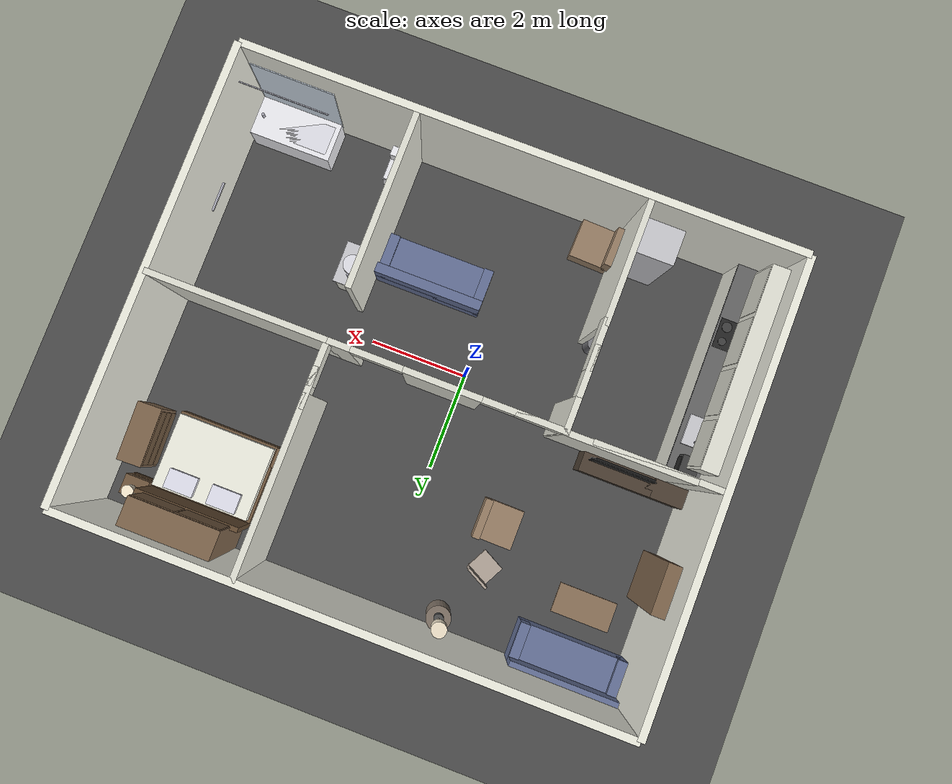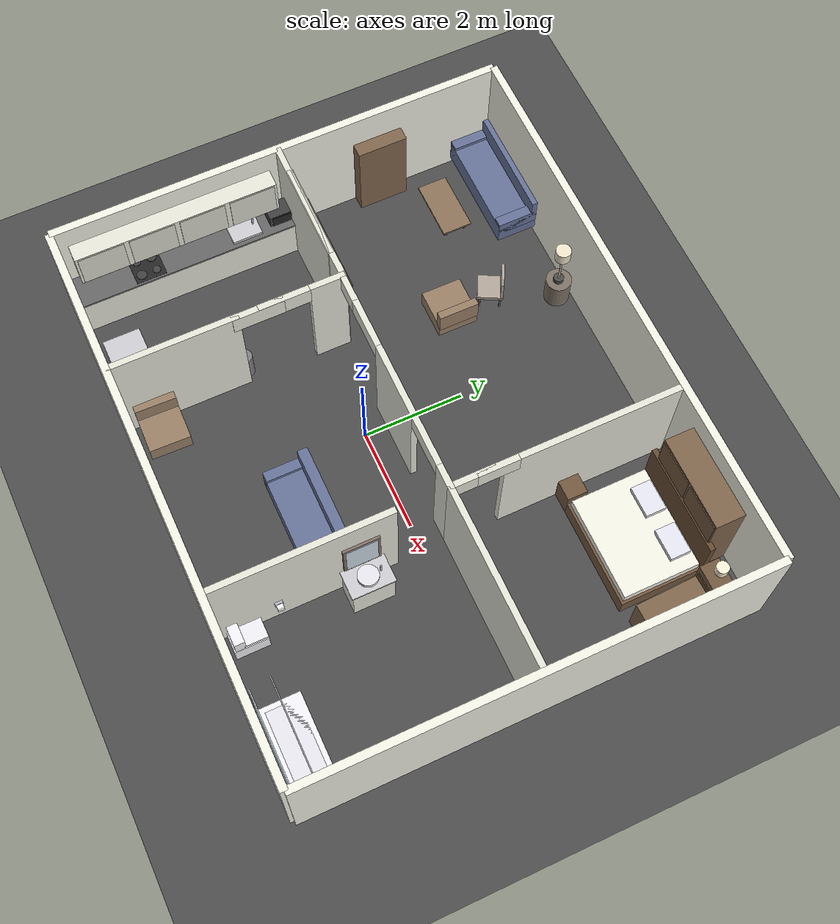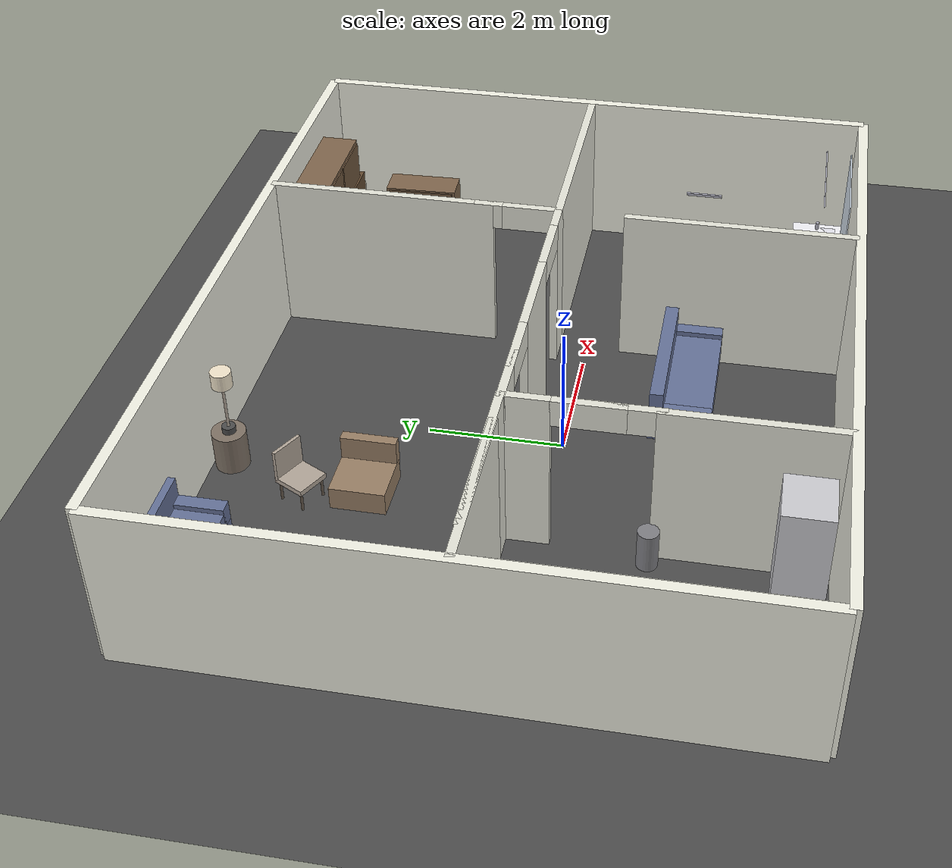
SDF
<sdf version="1.9">
 <world name="home_world">
  <physics name="1ms" type="ignored">
   <max_step_size>0.001</max_step_size>
   <real_time_factor>1</real_time_factor>
   <real_time_update_rate>1000</real_time_update_rate>
  </physics>
  <plugin name="ignition::gazebo::systems::Physics" filename="ignition-gazebo-physics-system"/>
  <plugin name="ignition::gazebo::systems::UserCommands" filename="ignition-gazebo-user-commands-system"/>
  <plugin name="ignition::gazebo::systems::SceneBroadcaster" filename="ignition-gazebo-scene-broadcaster-system"/>
  <plugin name="ignition::gazebo::systems::Contact" filename="ignition-gazebo-contact-system"/>
  <plugin name="ignition::gazebo::systems::Sensors" filename="ignition-gazebo-sensors-system">
   <render_engine>ogre2</render_engine>
  </plugin>
  <gravity>0 0 -9.8</gravity>
  <magnetic_field>6e-06 2.3e-05 -4.2e-05</magnetic_field>
  <atmosphere type="adiabatic"/>
  <scene><ambient>0.4 0.4 0.4 1</ambient><background>0.7 0.7 0.7 1</background><shadows>true</shadows></scene>
  <model name="ground_plane">
   <static>true</static>
   <link name="link">
    <collision name="collision">
     <geometry><plane><normal>0 0 1</normal><size>100 100</size></plane></geometry>
    </collision>
    <visual name="visual">
     <geometry><plane><normal>0 0 1</normal><size>100 100</size></plane></geometry>
     <material><ambient>0.3 0.3 0.3 1</ambient><diffuse>0.3 0.3 0.3 1</diffuse></material>
    </visual>
    <inertial>
     <mass>1</mass>
     <inertia><ixx>1</ixx><ixy>0</ixy><ixz>0</ixz><iyy>1</iyy><iyz>0</iyz><izz>1</izz></inertia>
    </inertial>
   </link>
  </model>
  <model name="wall_north">
   <static>true</static>
   <pose>0.5 5 1.25 0 -0 0</pose>
   <link name="link">
    <collision name="collision"><geometry><box><size>11 0.15 2.5</size></box></geometry></collision>
    <visual name="visual">
     <geometry><box><size>11 0.15 2.5</size></box></geometry>
     <material><ambient>0.9 0.9 0.85 1</ambient><diffuse>0.95 0.95 0.9 1</diffuse></material>
    </visual>
    <inertial>
     <mass>1</mass>
     <inertia><ixx>1</ixx><ixy>0</ixy><ixz>0</ixz><iyy>1</iyy><iyz>0</iyz><izz>1</izz></inertia>
    </inertial>
   </link>
  </model>
  <model name="wall_south">
   <static>true</static>
   <pose>0.5 -4 1.25 0 -0 0</pose>
   <link name="link">
    <collision name="collision"><geometry><box><size>11 0.15 2.5</size></box></geometry></collision>
    <visual name="visual">
     <geometry><box><size>11 0.15 2.5</size></box></geometry>
     <material><ambient>0.9 0.9 0.85 1</ambient><diffuse>0.95 0.95 0.9 1</diffuse></material>
    </visual>
    <inertial>
     <mass>1</mass>
     <inertia><ixx>1</ixx><ixy>0</ixy><ixz>0</ixz><iyy>1</iyy><iyz>0</iyz><izz>1</izz></inertia>
    </inertial>
   </link>
  </model>
  <model name="wall_west">
   <static>true</static>
   <pose>-5 0.5 1.25 0 -0 0</pose>
   <link name="link">
    <collision name="collision"><geometry><box><size>0.15 9 2.5</size></box></geometry></collision>
    <visual name="visual">
     <geometry><box><size>0.15 9 2.5</size></box></geometry>
     <material><ambient>0.9 0.9 0.85 1</ambient><diffuse>0.95 0.95 0.9 1</diffuse></material>
    </visual>
    <inertial>
     <mass>1</mass>
     <inertia><ixx>1</ixx><ixy>0</ixy><ixz>0</ixz><iyy>1</iyy><iyz>0</iyz><izz>1</izz></inertia>
    </inertial>
   </link>
  </model>
  <model name="wall_east">
   <static>true</static>
   <pose>6 0.5 1.25 0 -0 0</pose>
   <link name="link">
    <collision name="collision"><geometry><box><size>0.15 9 2.5</size></box></geometry></collision>
    <visual name="visual">
     <geometry><box><size>0.15 9 2.5</size></box></geometry>
     <material><ambient>0.9 0.9 0.85 1</ambient><diffuse>0.95 0.95 0.9 1</diffuse></material>
    </visual>
    <inertial>
     <mass>1</mass>
     <inertia><ixx>1</ixx><ixy>0</ixy><ixz>0</ixz><iyy>1</iyy><iyz>0</iyz><izz>1</izz></inertia>
    </inertial>
   </link>
  </model>
  <model name="wall_livingroom_south_west">
   <static>true</static>
   <pose>-3.75 0.5 1.25 0 -0 0</pose>
   <link name="link">
    <collision name="collision"><geometry><box><size>2.5 0.12 2.5</size></box></geometry></collision>
    <visual name="visual">
     <geometry><box><size>2.5 0.12 2.5</size></box></geometry>
     <material><ambient>0.85 0.85 0.8 1</ambient><diffuse>0.9 0.9 0.85 1</diffuse></material>
    </visual>
    <inertial>
     <mass>1</mass>
     <inertia><ixx>1</ixx><ixy>0</ixy><ixz>0</ixz><iyy>1</iyy><iyz>0</iyz><izz>1</izz></inertia>
    </inertial>
   </link>
  </model>
  <model name="wall_livingroom_door_header">
   <static>true</static>
   <pose>-0.929556 0.5 2.3 0 -0 0</pose>
   <link name="link">
    <collision name="collision"><geometry><box><size>1 0.12 0.4</size></box></geometry></collision>
    <visual name="visual">
     <geometry><box><size>1 0.12 0.4</size></box></geometry>
     <material><ambient>0.85 0.85 0.8 1</ambient><diffuse>0.9 0.9 0.85 1</diffuse></material>
    </visual>
    <inertial>
     <mass>1</mass>
     <inertia><ixx>1</ixx><ixy>0</ixy><ixz>0</ixz><iyy>1</iyy><iyz>0</iyz><izz>1</izz></inertia>
    </inertial>
   </link>
  </model>
  <model name="wall_center_between_doors">
   <static>true</static>
   <pose>0.318901 0.5 1.25 0 -0 0</pose>
   <link name="link">
    <collision name="collision"><geometry><box><size>1.5 0.12 2.5</size></box></geometry></collision>
    <visual name="visual">
     <geometry><box><size>1.5 0.12 2.5</size></box></geometry>
     <material><ambient>0.85 0.85 0.8 1</ambient><diffuse>0.9 0.9 0.85 1</diffuse></material>
    </visual>
    <inertial>
     <mass>1</mass>
     <inertia><ixx>1</ixx><ixy>0</ixy><ixz>0</ixz><iyy>1</iyy><iyz>0</iyz><izz>1</izz></inertia>
    </inertial>
   </link>
  </model>
  <model name="wall_bedroom_door_header">
   <static>true</static>
   <pose>1.56303 0.5 2.3 0 -0 0</pose>
   <link name="link">
    <collision name="collision"><geometry><box><size>1 0.12 0.4</size></box></geometry></collision>
    <visual name="visual">
     <geometry><box><size>1 0.12 0.4</size></box></geometry>
     <material><ambient>0.85 0.85 0.8 1</ambient><diffuse>0.9 0.9 0.85 1</diffuse></material>
    </visual>
    <inertial>
     <mass>1</mass>
     <inertia><ixx>1</ixx><ixy>0</ixy><ixz>0</ixz><iyy>1</iyy><iyz>0</iyz><izz>1</izz></inertia>
    </inertial>
   </link>
  </model>
  <model name="wall_bedroom_south">
   <static>true</static>
   <pose>2.31 0.5 1.25 0 -0 0</pose>
   <link name="link">
    <collision name="collision"><geometry><box><size>0.5 0.12 2.5</size></box></geometry></collision>
    <visual name="visual">
     <geometry><box><size>0.5 0.12 2.5</size></box></geometry>
     <material><ambient>0.85 0.85 0.8 1</ambient><diffuse>0.9 0.9 0.85 1</diffuse></material>
    </visual>
    <inertial>
     <mass>1</mass>
     <inertia><ixx>1</ixx><ixy>0</ixy><ixz>0</ixz><iyy>1</iyy><iyz>0</iyz><izz>1</izz></inertia>
    </inertial>
   </link>
  </model>
  <model name="wall_bathroom_north">
   <static>true</static>
   <pose>4.25 0.5 1.25 0 -0 0</pose>
   <link name="link">
    <collision name="collision"><geometry><box><size>3.5 0.12 2.5</size></box></geometry></collision>
    <visual name="visual">
     <geometry><box><size>3.5 0.12 2.5</size></box></geometry>
     <material><ambient>0.85 0.85 0.8 1</ambient><diffuse>0.9 0.9 0.85 1</diffuse></material>
    </visual>
    <inertial>
     <mass>1</mass>
     <inertia><ixx>1</ixx><ixy>0</ixy><ixz>0</ixz><iyy>1</iyy><iyz>0</iyz><izz>1</izz></inertia>
    </inertial>
   </link>
  </model>
  <model name="wall_living_kitchen_upper">
   <static>true</static>
   <pose>-2 0.205752 1.25 0 -0 0</pose>
   <link name="link">
    <collision name="collision"><geometry><box><size>0.12 0.7 2.5</size></box></geometry></collision>
    <visual name="visual">
     <geometry><box><size>0.12 0.7 2.5</size></box></geometry>
     <material><ambient>0.85 0.85 0.8 1</ambient><diffuse>0.9 0.9 0.85 1</diffuse></material>
    </visual>
    <inertial>
     <mass>1</mass>
     <inertia><ixx>1</ixx><ixy>0</ixy><ixz>0</ixz><iyy>1</iyy><iyz>0</iyz><izz>1</izz></inertia>
    </inertial>
   </link>
  </model>
  <model name="wall_kitchen_door_header">
   <static>true</static>
   <pose>-2 -0.634617 2.3 0 -0 0</pose>
   <link name="link">
    <collision name="collision"><geometry><box><size>0.12 1 0.4</size></box></geometry></collision>
    <visual name="visual">
     <geometry><box><size>0.12 1 0.4</size></box></geometry>
     <material><ambient>0.85 0.85 0.8 1</ambient><diffuse>0.9 0.9 0.85 1</diffuse></material>
    </visual>
    <inertial>
     <mass>1</mass>
     <inertia><ixx>1</ixx><ixy>0</ixy><ixz>0</ixz><iyy>1</iyy><iyz>0</iyz><izz>1</izz></inertia>
    </inertial>
   </link>
  </model>
  <model name="wall_living_kitchen_lower">
   <static>true</static>
   <pose>-2 -2.75 1.25 0 -0 0</pose>
   <link name="link">
    <collision name="collision"><geometry><box><size>0.12 2.5 2.5</size></box></geometry></collision>
    <visual name="visual">
     <geometry><box><size>0.12 2.5 2.5</size></box></geometry>
     <material><ambient>0.85 0.85 0.8 1</ambient><diffuse>0.9 0.9 0.85 1</diffuse></material>
    </visual>
    <inertial>
     <mass>1</mass>
     <inertia><ixx>1</ixx><ixy>0</ixy><ixz>0</ixz><iyy>1</iyy><iyz>0</iyz><izz>1</izz></inertia>
    </inertial>
   </link>
  </model>
  <model name="wall_bedroom_bathroom_upper">
   <static>true</static>
   <pose>2.5 3.25 1.25 0 -0 0</pose>
   <link name="link">
    <collision name="collision"><geometry><box><size>0.12 3.5 2.5</size></box></geometry></collision>
    <visual name="visual">
     <geometry><box><size>0.12 3.5 2.5</size></box></geometry>
     <material><ambient>0.85 0.85 0.8 1</ambient><diffuse>0.9 0.9 0.85 1</diffuse></material>
    </visual>
    <inertial>
     <mass>1</mass>
     <inertia><ixx>1</ixx><ixy>0</ixy><ixz>0</ixz><iyy>1</iyy><iyz>0</iyz><izz>1</izz></inertia>
    </inertial>
   </link>
  </model>
  <model name="wall_bathroom_door_header">
   <static>true</static>
   <pose>2.5 0.959848 2.3 0 -0 0</pose>
   <link name="link">
    <collision name="collision"><geometry><box><size>0.12 0.8 0.4</size></box></geometry></collision>
    <visual name="visual">
     <geometry><box><size>0.12 0.8 0.4</size></box></geometry>
     <material><ambient>0.85 0.85 0.8 1</ambient><diffuse>0.9 0.9 0.85 1</diffuse></material>
    </visual>
    <inertial>
     <mass>1</mass>
     <inertia><ixx>1</ixx><ixy>0</ixy><ixz>0</ixz><iyy>1</iyy><iyz>0</iyz><izz>1</izz></inertia>
    </inertial>
   </link>
  </model>
  <model name="wall_bedroom_bathroom_lower">
   <static>true</static>
   <pose>2.5 -2.25 1.25 0 -0 0</pose>
   <link name="link">
    <collision name="collision"><geometry><box><size>0.12 3.5 2.5</size></box></geometry></collision>
    <visual name="visual">
     <geometry><box><size>0.12 3.5 2.5</size></box></geometry>
     <material><ambient>0.85 0.85 0.8 1</ambient><diffuse>0.9 0.9 0.85 1</diffuse></material>
    </visual>
    <inertial>
     <mass>1</mass>
     <inertia><ixx>1</ixx><ixy>0</ixy><ixz>0</ixz><iyy>1</iyy><iyz>0</iyz><izz>1</izz></inertia>
    </inertial>
   </link>
  </model>
  <model name="sofa">
   <static>true</static>
   <pose>-3.8127 4.56578 0.4 0 -0 0</pose>
   <link name="link">
    <collision name="seat_col"><geometry><box><size>2.2 0.9 0.45</size></box></geometry></collision>
    <visual name="seat_vis">
     <geometry><box><size>2.2 0.9 0.45</size></box></geometry>
     <material><ambient>0.3 0.35 0.5 1</ambient><diffuse>0.4 0.45 0.6 1</diffuse></material>
    </visual>
    <collision name="back_col">
     <pose>0 0.35 0.35 0 0 0</pose>
     <geometry><box><size>2.2 0.2 0.5</size></box></geometry>
    </collision>
    <visual name="back_vis">
     <pose>0 0.35 0.35 0 0 0</pose>
     <geometry><box><size>2.2 0.2 0.5</size></box></geometry>
     <material><ambient>0.3 0.35 0.5 1</ambient><diffuse>0.4 0.45 0.6 1</diffuse></material>
    </visual>
    <visual name="arm_left">
     <pose>-1.0 0 0.15 0 0 0</pose>
     <geometry><box><size>0.2 0.9 0.3</size></box></geometry>
     <material><ambient>0.3 0.35 0.5 1</ambient><diffuse>0.4 0.45 0.6 1</diffuse></material>
    </visual>
    <visual name="arm_right">
     <pose>1.0 0 0.15 0 0 0</pose>
     <geometry><box><size>0.2 0.9 0.3</size></box></geometry>
     <material><ambient>0.3 0.35 0.5 1</ambient><diffuse>0.4 0.45 0.6 1</diffuse></material>
    </visual>
    <inertial>
     <mass>1</mass>
     <inertia><ixx>1</ixx><ixy>0</ixy><ixz>0</ixz><iyy>1</iyy><iyz>0</iyz><izz>1</izz></inertia>
    </inertial>
   </link>
  </model>
  <model name="coffee_table">
   <static>true</static>
   <pose>-3.86253 3.48221 0.22 0 -0 0</pose>
   <link name="link">
    <collision name="top_col"><geometry><box><size>1.2 0.6 0.04</size></box></geometry></collision>
    <visual name="top_vis">
     <geometry><box><size>1.2 0.6 0.04</size></box></geometry>
     <material><ambient>0.45 0.35 0.25 1</ambient><diffuse>0.55 0.45 0.35 1</diffuse></material>
    </visual>
    <visual name="leg1">
     <pose>-0.5 -0.2 -0.1 0 0 0</pose>
     <geometry>
      <cylinder><radius>0.029999999999999999</radius><length>0.20000000000000001</length></cylinder>
     </geometry>
     <material><ambient>0.3 0.25 0.2 1</ambient><diffuse>0.4 0.35 0.3 1</diffuse></material>
    </visual>
    <visual name="leg2">
     <pose>0.5 -0.2 -0.1 0 0 0</pose>
     <geometry>
      <cylinder><radius>0.029999999999999999</radius><length>0.20000000000000001</length></cylinder>
     </geometry>
     <material><ambient>0.3 0.25 0.2 1</ambient><diffuse>0.4 0.35 0.3 1</diffuse></material>
    </visual>
    <visual name="leg3">
     <pose>-0.5 0.2 -0.1 0 0 0</pose>
     <geometry>
      <cylinder><radius>0.029999999999999999</radius><length>0.20000000000000001</length></cylinder>
     </geometry>
     <material><ambient>0.3 0.25 0.2 1</ambient><diffuse>0.4 0.35 0.3 1</diffuse></material>
    </visual>
    <visual name="leg4">
     <pose>0.5 0.2 -0.1 0 0 0</pose>
     <geometry>
      <cylinder><radius>0.029999999999999999</radius><length>0.20000000000000001</length></cylinder>
     </geometry>
     <material><ambient>0.3 0.25 0.2 1</ambient><diffuse>0.4 0.35 0.3 1</diffuse></material>
    </visual>
    <inertial>
     <mass>1</mass>
     <inertia><ixx>1</ixx><ixy>0</ixy><ixz>0</ixz><iyy>1</iyy><iyz>0</iyz><izz>1</izz></inertia>
    </inertial>
   </link>
  </model>
  <model name="tv_stand">
   <static>true</static>
   <pose>-3.5 0.784214 0.3 0 -0 0</pose>
   <link name="link">
    <collision name="collision"><geometry><box><size>1.5 0.4 0.6</size></box></geometry></collision>
    <visual name="visual">
     <geometry><box><size>1.5 0.4 0.6</size></box></geometry>
     <material><ambient>0.2 0.15 0.1 1</ambient><diffuse>0.3 0.25 0.2 1</diffuse></material>
    </visual>
    <inertial>
     <mass>1</mass>
     <inertia><ixx>1</ixx><ixy>0</ixy><ixz>0</ixz><iyy>1</iyy><iyz>0</iyz><izz>1</izz></inertia>
    </inertial>
   </link>
  </model>
  <model name="tv">
   <static>true</static>
   <pose>-3.5 0.682625 0.85 0 -0 0</pose>
   <link name="link">
    <collision name="collision"><geometry><box><size>1.2 0.08 0.7</size></box></geometry></collision>
    <visual name="screen">
     <geometry><box><size>1.2 0.05 0.7</size></box></geometry>
     <material><ambient>0.05 0.05 0.05 1</ambient><diffuse>0.1 0.1 0.1 1</diffuse></material>
    </visual>
    <visual name="frame">
     <pose>0 0.03 0 0 0 0</pose>
     <geometry><box><size>1.25 0.02 0.75</size></box></geometry>
     <material><ambient>0.15 0.15 0.15 1</ambient><diffuse>0.2 0.2 0.2 1</diffuse></material>
    </visual>
    <inertial>
     <mass>1</mass>
     <inertia><ixx>1</ixx><ixy>0</ixy><ixz>0</ixz><iyy>1</iyy><iyz>0</iyz><izz>1</izz></inertia>
    </inertial>
   </link>
  </model>
  <model name="armchair">
   <static>true</static>
   <pose>-1.66029 2.53221 0.35 0 0 -1.57651</pose>
   <link name="link">
    <collision name="seat_col"><geometry><box><size>0.8 0.8 0.35</size></box></geometry></collision>
    <visual name="seat_vis">
     <geometry><box><size>0.8 0.8 0.35</size></box></geometry>
     <material><ambient>0.5 0.4 0.3 1</ambient><diffuse>0.6 0.5 0.4 1</diffuse></material>
    </visual>
    <visual name="back">
     <pose>0 0.35 0.3 0 0 0</pose>
     <geometry><box><size>0.8 0.15 0.45</size></box></geometry>
     <material><ambient>0.5 0.4 0.3 1</ambient><diffuse>0.6 0.5 0.4 1</diffuse></material>
    </visual>
    <inertial>
     <mass>1</mass>
     <inertia><ixx>1</ixx><ixy>0</ixy><ixz>0</ixz><iyy>1</iyy><iyz>0</iyz><izz>1</izz></inertia>
    </inertial>
   </link>
  </model>
  <model name="bookshelf">
   <static>true</static>
   <pose>-4.8 2.5 0.9 0 -0 0</pose>
   <link name="link">
    <collision name="collision"><geometry><box><size>0.3 1 1.8</size></box></geometry></collision>
    <visual name="frame">
     <geometry><box><size>0.3 1 1.8</size></box></geometry>
     <material><ambient>0.4 0.3 0.2 1</ambient><diffuse>0.5 0.4 0.3 1</diffuse></material>
    </visual>
    <visual name="shelf1">
     <pose>0 0 -0.6 0 0 0</pose>
     <geometry><box><size>0.28 0.95 0.02</size></box></geometry>
     <material><ambient>0.35 0.25 0.15 1</ambient><diffuse>0.45 0.35 0.25 1</diffuse></material>
    </visual>
    <visual name="shelf2">
     <geometry><box><size>0.28 0.95 0.02</size></box></geometry>
     <material><ambient>0.35 0.25 0.15 1</ambient><diffuse>0.45 0.35 0.25 1</diffuse></material>
    </visual>
    <visual name="shelf3">
     <pose>0 0 0.6 0 0 0</pose>
     <geometry><box><size>0.28 0.95 0.02</size></box></geometry>
     <material><ambient>0.35 0.25 0.15 1</ambient><diffuse>0.45 0.35 0.25 1</diffuse></material>
    </visual>
    <inertial>
     <mass>1</mass>
     <inertia><ixx>1</ixx><ixy>0</ixy><ixz>0</ixz><iyy>1</iyy><iyz>0</iyz><izz>1</izz></inertia>
    </inertial>
   </link>
  </model>
  <model name="side_table">
   <static>true</static>
   <pose>-1.2 4.65187 0.3 0 -0 0</pose>
   <link name="link">
    <collision name="collision">
     <geometry><cylinder><radius>0.25</radius><length>0.59999999999999998</length></cylinder></geometry>
    </collision>
    <visual name="visual">
     <geometry><cylinder><radius>0.25</radius><length>0.59999999999999998</length></cylinder></geometry>
     <material><ambient>0.4 0.35 0.3 1</ambient><diffuse>0.5 0.45 0.4 1</diffuse></material>
    </visual>
    <inertial>
     <mass>1</mass>
     <inertia><ixx>1</ixx><ixy>0</ixy><ixz>0</ixz><iyy>1</iyy><iyz>0</iyz><izz>1</izz></inertia>
    </inertial>
   </link>
  </model>
  <model name="floor_lamp">
   <static>true</static>
   <pose>-1.2 4.63964 0.6 0 -0 0</pose>
   <link name="link">
    <visual name="base">
     <pose>0 0 0.05 0 0 0</pose>
     <geometry>
      <cylinder><radius>0.10000000000000001</radius><length>0.10000000000000001</length></cylinder>
     </geometry>
     <material><ambient>0.2 0.2 0.2 1</ambient><diffuse>0.3 0.3 0.3 1</diffuse></material>
    </visual>
    <visual name="pole">
     <pose>0 0 0.5 0 0 0</pose>
     <geometry><cylinder><radius>0.02</radius><length>0.80000000000000004</length></cylinder></geometry>
     <material><ambient>0.6 0.55 0.5 1</ambient><diffuse>0.7 0.65 0.6 1</diffuse></material>
    </visual>
    <visual name="shade">
     <pose>0 0 0.95 0 0 0</pose>
     <geometry><cylinder><radius>0.14999999999999999</radius><length>0.25</length></cylinder></geometry>
     <material><ambient>0.9 0.85 0.7 1</ambient><diffuse>0.95 0.9 0.8 1</diffuse></material>
    </visual>
    <inertial>
     <mass>1</mass>
     <inertia><ixx>1</ixx><ixy>0</ixy><ixz>0</ixz><iyy>1</iyy><iyz>0</iyz><izz>1</izz></inertia>
    </inertial>
   </link>
  </model>
  <model name="bed">
   <static>true</static>
   <pose>4 3.5 0 0 -0 0</pose>
   <link name="link">
    <collision name="frame_col">
     <pose>0 0 0.2 0 0 0</pose>
     <geometry><box><size>2.1 1.6 0.4</size></box></geometry>
    </collision>
    <visual name="frame_vis">
     <pose>0 0 0.2 0 0 0</pose>
     <geometry><box><size>2.1 1.6 0.4</size></box></geometry>
     <material><ambient>0.35 0.25 0.15 1</ambient><diffuse>0.45 0.35 0.25 1</diffuse></material>
    </visual>
    <collision name="mattress_col">
     <pose>0 0 0.5 0 0 0</pose>
     <geometry><box><size>2 1.5 0.2</size></box></geometry>
    </collision>
    <visual name="mattress_vis">
     <pose>0 0 0.5 0 0 0</pose>
     <geometry><box><size>2 1.5 0.2</size></box></geometry>
     <material><ambient>0.9 0.9 0.85 1</ambient><diffuse>0.95 0.95 0.9 1</diffuse></material>
    </visual>
    <collision name="headboard_col">
     <pose>0 0.85 0.8 0 0 0</pose>
     <geometry><box><size>2.1 0.1 1</size></box></geometry>
    </collision>
    <visual name="headboard_vis">
     <pose>0 0.85 0.8 0 0 0</pose>
     <geometry><box><size>2.1 0.1 1</size></box></geometry>
     <material><ambient>0.3 0.2 0.12 1</ambient><diffuse>0.4 0.3 0.2 1</diffuse></material>
    </visual>
    <visual name="pillow1">
     <pose>-0.45 0.5 0.65 0 0 0</pose>
     <geometry><box><size>0.6 0.4 0.12</size></box></geometry>
     <material><ambient>0.85 0.85 0.9 1</ambient><diffuse>0.9 0.9 0.95 1</diffuse></material>
    </visual>
    <visual name="pillow2">
     <pose>0.45 0.5 0.65 0 0 0</pose>
     <geometry><box><size>0.6 0.4 0.12</size></box></geometry>
     <material><ambient>0.85 0.85 0.9 1</ambient><diffuse>0.9 0.9 0.95 1</diffuse></material>
    </visual>
    <inertial>
     <mass>1</mass>
     <inertia><ixx>1</ixx><ixy>0</ixy><ixz>0</ixz><iyy>1</iyy><iyz>0</iyz><izz>1</izz></inertia>
    </inertial>
   </link>
  </model>
  <model name="nightstand_1">
   <static>true</static>
   <pose>5.3 4.42414 0.3 0 -0 0</pose>
   <link name="link">
    <collision name="collision"><geometry><box><size>0.5 0.4 0.6</size></box></geometry></collision>
    <visual name="visual">
     <geometry><box><size>0.5 0.4 0.6</size></box></geometry>
     <material><ambient>0.35 0.25 0.15 1</ambient><diffuse>0.45 0.35 0.25 1</diffuse></material>
    </visual>
    <visual name="drawer">
     <pose>0 -0.21 0 0 0 0</pose>
     <geometry><box><size>0.4 0.02 0.2</size></box></geometry>
     <material><ambient>0.3 0.2 0.1 1</ambient><diffuse>0.4 0.3 0.2 1</diffuse></material>
    </visual>
    <inertial>
     <mass>1</mass>
     <inertia><ixx>1</ixx><ixy>0</ixy><ixz>0</ixz><iyy>1</iyy><iyz>0</iyz><izz>1</izz></inertia>
    </inertial>
   </link>
  </model>
  <model name="nightstand_2">
   <static>true</static>
   <pose>2.7 2.89912 0.3 0 -0 0</pose>
   <link name="link">
    <collision name="collision"><geometry><box><size>0.5 0.4 0.6</size></box></geometry></collision>
    <visual name="visual">
     <geometry><box><size>0.5 0.4 0.6</size></box></geometry>
     <material><ambient>0.35 0.25 0.15 1</ambient><diffuse>0.45 0.35 0.25 1</diffuse></material>
    </visual>
    <inertial>
     <mass>1</mass>
     <inertia><ixx>1</ixx><ixy>0</ixy><ixz>0</ixz><iyy>1</iyy><iyz>0</iyz><izz>1</izz></inertia>
    </inertial>
   </link>
  </model>
  <model name="bedside_lamp">
   <static>true</static>
   <pose>5.3 4.49184 0.6 0 -0 0</pose>
   <link name="link">
    <visual name="base">
     <pose>0 0 0.05 0 0 0</pose>
     <geometry>
      <cylinder><radius>0.080000000000000002</radius><length>0.10000000000000001</length></cylinder>
     </geometry>
     <material><ambient>0.6 0.55 0.5 1</ambient><diffuse>0.7 0.65 0.6 1</diffuse></material>
    </visual>
    <visual name="shade">
     <pose>0 0 0.2 0 0 0</pose>
     <geometry><cylinder><radius>0.12</radius><length>0.20000000000000001</length></cylinder></geometry>
     <material><ambient>0.95 0.9 0.8 1</ambient><diffuse>1 0.95 0.85 1</diffuse></material>
    </visual>
    <inertial>
     <mass>1</mass>
     <inertia><ixx>1</ixx><ixy>0</ixy><ixz>0</ixz><iyy>1</iyy><iyz>0</iyz><izz>1</izz></inertia>
    </inertial>
   </link>
  </model>
  <model name="wardrobe">
   <static>true</static>
   <pose>4 4.65 1 0 -0 0</pose>
   <link name="link">
    <collision name="collision"><geometry><box><size>1.8 0.6 2</size></box></geometry></collision>
    <visual name="visual">
     <geometry><box><size>1.8 0.6 2</size></box></geometry>
     <material><ambient>0.4 0.3 0.2 1</ambient><diffuse>0.5 0.4 0.3 1</diffuse></material>
    </visual>
    <visual name="door_left">
     <pose>-0.45 -0.31 0 0 0 0</pose>
     <geometry><box><size>0.85 0.02 1.9</size></box></geometry>
     <material><ambient>0.35 0.25 0.15 1</ambient><diffuse>0.45 0.35 0.25 1</diffuse></material>
    </visual>
    <visual name="door_right">
     <pose>0.45 -0.31 0 0 0 0</pose>
     <geometry><box><size>0.85 0.02 1.9</size></box></geometry>
     <material><ambient>0.35 0.25 0.15 1</ambient><diffuse>0.45 0.35 0.25 1</diffuse></material>
    </visual>
    <inertial>
     <mass>1</mass>
     <inertia><ixx>1</ixx><ixy>0</ixy><ixz>0</ixz><iyy>1</iyy><iyz>0</iyz><izz>1</izz></inertia>
    </inertial>
   </link>
  </model>
  <model name="dresser">
   <static>true</static>
   <pose>5.50802 3.38724 0.45 0 0 -1.54098</pose>
   <link name="link">
    <collision name="collision"><geometry><box><size>1.2 0.5 0.9</size></box></geometry></collision>
    <visual name="visual">
     <geometry><box><size>1.2 0.5 0.9</size></box></geometry>
     <material><ambient>0.4 0.3 0.2 1</ambient><diffuse>0.5 0.4 0.3 1</diffuse></material>
    </visual>
    <visual name="drawer1">
     <pose>0 -0.26 0.3 0 0 0</pose>
     <geometry><box><size>1.1 0.02 0.25</size></box></geometry>
     <material><ambient>0.35 0.25 0.15 1</ambient><diffuse>0.45 0.35 0.25 1</diffuse></material>
    </visual>
    <visual name="drawer2">
     <pose>0 -0.26 0 0 0 0</pose>
     <geometry><box><size>1.1 0.02 0.25</size></box></geometry>
     <material><ambient>0.35 0.25 0.15 1</ambient><diffuse>0.45 0.35 0.25 1</diffuse></material>
    </visual>
    <visual name="drawer3">
     <pose>0 -0.26 -0.3 0 0 0</pose>
     <geometry><box><size>1.1 0.02 0.25</size></box></geometry>
     <material><ambient>0.35 0.25 0.15 1</ambient><diffuse>0.45 0.35 0.25 1</diffuse></material>
    </visual>
    <inertial>
     <mass>1</mass>
     <inertia><ixx>1</ixx><ixy>0</ixy><ixz>0</ixz><iyy>1</iyy><iyz>0</iyz><izz>1</izz></inertia>
    </inertial>
   </link>
  </model>
  <model name="bedroom_chair">
   <static>true</static>
   <pose>-1.71989 3.44443 0.35 0 0 -0.48062</pose>
   <link name="link">
    <collision name="collision"><geometry><box><size>0.5 0.5 0.35</size></box></geometry></collision>
    <visual name="seat">
     <geometry><box><size>0.5 0.5 0.08</size></box></geometry>
     <material><ambient>0.6 0.55 0.5 1</ambient><diffuse>0.7 0.65 0.6 1</diffuse></material>
    </visual>
    <visual name="back">
     <pose>0 0.22 0.25 0 0 0</pose>
     <geometry><box><size>0.5 0.05 0.5</size></box></geometry>
     <material><ambient>0.6 0.55 0.5 1</ambient><diffuse>0.7 0.65 0.6 1</diffuse></material>
    </visual>
    <visual name="leg1">
     <pose>-0.2 -0.2 -0.175 0 0 0</pose>
     <geometry><cylinder><radius>0.02</radius><length>0.34999999999999998</length></cylinder></geometry>
     <material><ambient>0.3 0.25 0.2 1</ambient><diffuse>0.4 0.35 0.3 1</diffuse></material>
    </visual>
    <visual name="leg2">
     <pose>0.2 -0.2 -0.175 0 0 0</pose>
     <geometry><cylinder><radius>0.02</radius><length>0.34999999999999998</length></cylinder></geometry>
     <material><ambient>0.3 0.25 0.2 1</ambient><diffuse>0.4 0.35 0.3 1</diffuse></material>
    </visual>
    <visual name="leg3">
     <pose>-0.2 0.2 -0.175 0 0 0</pose>
     <geometry><cylinder><radius>0.02</radius><length>0.34999999999999998</length></cylinder></geometry>
     <material><ambient>0.3 0.25 0.2 1</ambient><diffuse>0.4 0.35 0.3 1</diffuse></material>
    </visual>
    <visual name="leg4">
     <pose>0.2 0.2 -0.175 0 0 0</pose>
     <geometry><cylinder><radius>0.02</radius><length>0.34999999999999998</length></cylinder></geometry>
     <material><ambient>0.3 0.25 0.2 1</ambient><diffuse>0.4 0.35 0.3 1</diffuse></material>
    </visual>
    <inertial>
     <mass>1</mass>
     <inertia><ixx>1</ixx><ixy>0</ixy><ixz>0</ixz><iyy>1</iyy><iyz>0</iyz><izz>1</izz></inertia>
    </inertial>
   </link>
  </model>
  <model name="kitchen_counter_west">
   <static>true</static>
   <pose>-4.6 -1.75 0.45 0 -0 0</pose>
   <link name="link">
    <collision name="collision"><geometry><box><size>0.65 4.5 0.9</size></box></geometry></collision>
    <visual name="cabinet">
     <geometry><box><size>0.65 4.5 0.9</size></box></geometry>
     <material><ambient>0.85 0.85 0.8 1</ambient><diffuse>0.9 0.9 0.85 1</diffuse></material>
    </visual>
    <visual name="countertop">
     <pose>0 0 0.47 0 0 0</pose>
     <geometry><box><size>0.68 4.55 0.04</size></box></geometry>
     <material><ambient>0.3 0.3 0.3 1</ambient><diffuse>0.4 0.4 0.4 1</diffuse></material>
    </visual>
    <inertial>
     <mass>1</mass>
     <inertia><ixx>1</ixx><ixy>0</ixy><ixz>0</ixz><iyy>1</iyy><iyz>0</iyz><izz>1</izz></inertia>
    </inertial>
   </link>
  </model>
  <model name="stove">
   <static>true</static>
   <pose>-4.6 -2.5 0.92 0 -0 0</pose>
   <link name="link">
    <collision name="collision"><geometry><box><size>0.6 0.6 0.05</size></box></geometry></collision>
    <visual name="surface">
     <geometry><box><size>0.6 0.6 0.05</size></box></geometry>
     <material><ambient>0.1 0.1 0.1 1</ambient><diffuse>0.15 0.15 0.15 1</diffuse></material>
    </visual>
    <visual name="burner1">
     <pose>-0.15 0.15 0.03 0 0 0</pose>
     <geometry><cylinder><radius>0.10000000000000001</radius><length>0.02</length></cylinder></geometry>
     <material><ambient>0.2 0.2 0.2 1</ambient><diffuse>0.25 0.25 0.25 1</diffuse></material>
    </visual>
    <visual name="burner2">
     <pose>0.15 0.15 0.03 0 0 0</pose>
     <geometry><cylinder><radius>0.080000000000000002</radius><length>0.02</length></cylinder></geometry>
     <material><ambient>0.2 0.2 0.2 1</ambient><diffuse>0.25 0.25 0.25 1</diffuse></material>
    </visual>
    <visual name="burner3">
     <pose>-0.15 -0.15 0.03 0 0 0</pose>
     <geometry><cylinder><radius>0.080000000000000002</radius><length>0.02</length></cylinder></geometry>
     <material><ambient>0.2 0.2 0.2 1</ambient><diffuse>0.25 0.25 0.25 1</diffuse></material>
    </visual>
    <visual name="burner4">
     <pose>0.15 -0.15 0.03 0 0 0</pose>
     <geometry><cylinder><radius>0.10000000000000001</radius><length>0.02</length></cylinder></geometry>
     <material><ambient>0.2 0.2 0.2 1</ambient><diffuse>0.25 0.25 0.25 1</diffuse></material>
    </visual>
    <inertial>
     <mass>1</mass>
     <inertia><ixx>1</ixx><ixy>0</ixy><ixz>0</ixz><iyy>1</iyy><iyz>0</iyz><izz>1</izz></inertia>
    </inertial>
   </link>
  </model>
  <model name="kitchen_sink">
   <static>true</static>
   <pose>-4.6 -0.5 0.9 0 -0 0</pose>
   <link name="link">
    <collision name="collision"><geometry><box><size>0.5 0.6 0.2</size></box></geometry></collision>
    <visual name="basin">
     <geometry><box><size>0.5 0.6 0.2</size></box></geometry>
     <material><ambient>0.7 0.7 0.72 1</ambient><diffuse>0.8 0.8 0.82 1</diffuse></material>
    </visual>
    <visual name="faucet">
     <pose>0 0.2 0.2 0 0 0</pose>
     <geometry><cylinder><radius>0.02</radius><length>0.29999999999999999</length></cylinder></geometry>
     <material><ambient>0.6 0.6 0.65 1</ambient><diffuse>0.7 0.7 0.75 1</diffuse></material>
    </visual>
    <visual name="spout">
     <pose>0 0.1 0.35 1.57 0 0</pose>
     <geometry>
      <cylinder><radius>0.014999999999999999</radius><length>0.20000000000000001</length></cylinder>
     </geometry>
     <material><ambient>0.6 0.6 0.65 1</ambient><diffuse>0.7 0.7 0.75 1</diffuse></material>
    </visual>
    <inertial>
     <mass>1</mass>
     <inertia><ixx>1</ixx><ixy>0</ixy><ixz>0</ixz><iyy>1</iyy><iyz>0</iyz><izz>1</izz></inertia>
    </inertial>
   </link>
  </model>
  <model name="upper_cabinets">
   <static>true</static>
   <pose>-4.7 -1.75 1.7 0 -0 0</pose>
   <link name="link">
    <collision name="collision"><geometry><box><size>0.35 4 0.8</size></box></geometry></collision>
    <visual name="visual">
     <geometry><box><size>0.35 4 0.8</size></box></geometry>
     <material><ambient>0.85 0.85 0.8 1</ambient><diffuse>0.9 0.9 0.85 1</diffuse></material>
    </visual>
    <visual name="door1">
     <pose>0.18 -1.5 0 0 0 0</pose>
     <geometry><box><size>0.02 0.9 0.75</size></box></geometry>
     <material><ambient>0.8 0.8 0.75 1</ambient><diffuse>0.85 0.85 0.8 1</diffuse></material>
    </visual>
    <visual name="door2">
     <pose>0.18 -0.5 0 0 0 0</pose>
     <geometry><box><size>0.02 0.9 0.75</size></box></geometry>
     <material><ambient>0.8 0.8 0.75 1</ambient><diffuse>0.85 0.85 0.8 1</diffuse></material>
    </visual>
    <visual name="door3">
     <pose>0.18 0.5 0 0 0 0</pose>
     <geometry><box><size>0.02 0.9 0.75</size></box></geometry>
     <material><ambient>0.8 0.8 0.75 1</ambient><diffuse>0.85 0.85 0.8 1</diffuse></material>
    </visual>
    <visual name="door4">
     <pose>0.18 1.5 0 0 0 0</pose>
     <geometry><box><size>0.02 0.9 0.75</size></box></geometry>
     <material><ambient>0.8 0.8 0.75 1</ambient><diffuse>0.85 0.85 0.8 1</diffuse></material>
    </visual>
    <inertial>
     <mass>1</mass>
     <inertia><ixx>1</ixx><ixy>0</ixy><ixz>0</ixz><iyy>1</iyy><iyz>0</iyz><izz>1</izz></inertia>
    </inertial>
   </link>
  </model>
  <model name="refrigerator">
   <static>true</static>
   <pose>-2.5 -3.5 0.9 0 -0 0</pose>
   <link name="link">
    <collision name="collision"><geometry><box><size>0.8 0.7 1.8</size></box></geometry></collision>
    <visual name="body">
     <geometry><box><size>0.8 0.7 1.8</size></box></geometry>
     <material><ambient>0.7 0.7 0.72 1</ambient><diffuse>0.8 0.8 0.82 1</diffuse></material>
    </visual>
    <visual name="handle_top">
     <pose>0.41 -0.25 0.4 0 0 0</pose>
     <geometry><box><size>0.02 0.1 0.3</size></box></geometry>
     <material><ambient>0.5 0.5 0.52 1</ambient><diffuse>0.6 0.6 0.62 1</diffuse></material>
    </visual>
    <visual name="handle_bottom">
     <pose>0.41 -0.25 -0.5 0 0 0</pose>
     <geometry><box><size>0.02 0.1 0.25</size></box></geometry>
     <material><ambient>0.5 0.5 0.52 1</ambient><diffuse>0.6 0.6 0.62 1</diffuse></material>
    </visual>
    <inertial>
     <mass>1</mass>
     <inertia><ixx>1</ixx><ixy>0</ixy><ixz>0</ixz><iyy>1</iyy><iyz>0</iyz><izz>1</izz></inertia>
    </inertial>
   </link>
  </model>
  <model name="microwave">
   <static>true</static>
   <pose>-4.6 0.248494 1.05 0 -0 0</pose>
   <link name="link">
    <collision name="collision"><geometry><box><size>0.35 0.5 0.3</size></box></geometry></collision>
    <visual name="body">
     <geometry><box><size>0.35 0.5 0.3</size></box></geometry>
     <material><ambient>0.2 0.2 0.2 1</ambient><diffuse>0.25 0.25 0.25 1</diffuse></material>
    </visual>
    <visual name="door">
     <pose>0.18 0 0 0 0 0</pose>
     <geometry><box><size>0.02 0.4 0.25</size></box></geometry>
     <material><ambient>0.1 0.1 0.1 1</ambient><diffuse>0.15 0.15 0.15 1</diffuse></material>
    </visual>
    <inertial>
     <mass>1</mass>
     <inertia><ixx>1</ixx><ixy>0</ixy><ixz>0</ixz><iyy>1</iyy><iyz>0</iyz><izz>1</izz></inertia>
    </inertial>
   </link>
  </model>
  <model name="kitchen_trash">
   <static>true</static>
   <pose>-2.2 -1.5 0.3 0 -0 0</pose>
   <link name="link">
    <collision name="collision">
     <geometry>
      <cylinder><radius>0.14999999999999999</radius><length>0.59999999999999998</length></cylinder>
     </geometry>
    </collision>
    <visual name="visual">
     <geometry>
      <cylinder><radius>0.14999999999999999</radius><length>0.59999999999999998</length></cylinder>
     </geometry>
     <material><ambient>0.4 0.4 0.42 1</ambient><diffuse>0.5 0.5 0.52 1</diffuse></material>
    </visual>
    <inertial>
     <mass>1</mass>
     <inertia><ixx>1</ixx><ixy>0</ixy><ixz>0</ixz><iyy>1</iyy><iyz>0</iyz><izz>1</izz></inertia>
    </inertial>
   </link>
  </model>
  <model name="bathtub">
   <static>true</static>
   <pose>5 -3.46048 0.3 0 -0 0</pose>
   <link name="link">
    <collision name="collision"><geometry><box><size>1.7 0.8 0.6</size></box></geometry></collision>
    <visual name="exterior">
     <geometry><box><size>1.7 0.8 0.6</size></box></geometry>
     <material><ambient>0.9 0.9 0.92 1</ambient><diffuse>0.95 0.95 0.97 1</diffuse></material>
    </visual>
    <visual name="interior">
     <pose>0 0 0.05 0 0 0</pose>
     <geometry><box><size>1.5 0.6 0.5</size></box></geometry>
     <material><ambient>0.85 0.85 0.88 1</ambient><diffuse>0.9 0.9 0.93 1</diffuse></material>
    </visual>
    <visual name="faucet">
     <pose>0.7 0 0.35 0 0 0</pose>
     <geometry>
      <cylinder><radius>0.029999999999999999</radius><length>0.14999999999999999</length></cylinder>
     </geometry>
     <material><ambient>0.6 0.6 0.65 1</ambient><diffuse>0.7 0.7 0.75 1</diffuse></material>
    </visual>
    <inertial>
     <mass>1</mass>
     <inertia><ixx>1</ixx><ixy>0</ixy><ixz>0</ixz><iyy>1</iyy><iyz>0</iyz><izz>1</izz></inertia>
    </inertial>
   </link>
  </model>
  <model name="shower_rod">
   <static>true</static>
   <pose>5 -3.4766 2 0 -0 0</pose>
   <link name="link">
    <visual name="rod">
     <geometry><box><size>1.8 0.02 0.02</size></box></geometry>
     <material><ambient>0.6 0.6 0.65 1</ambient><diffuse>0.7 0.7 0.75 1</diffuse></material>
    </visual>
    <visual name="curtain">
     <pose>0 -0.4 -0.8 0 0 0</pose>
     <geometry><box><size>1.7 0.02 1.6</size></box></geometry>
     <material><ambient>0.8 0.85 0.9 1</ambient><diffuse>0.85 0.9 0.95 1</diffuse></material>
    </visual>
    <inertial>
     <mass>1</mass>
     <inertia><ixx>1</ixx><ixy>0</ixy><ixz>0</ixz><iyy>1</iyy><iyz>0</iyz><izz>1</izz></inertia>
    </inertial>
   </link>
  </model>
  <model name="toilet">
   <static>true</static>
   <pose>2.80821 -3.49969 0 0 -0 1.57</pose>
   <link name="link">
    <collision name="base_col">
     <pose>0 0 0.2 0 0 0</pose>
     <geometry><box><size>0.65 0.4 0.4</size></box></geometry>
    </collision>
    <visual name="base">
     <pose>0 0 0.2 0 0 0</pose>
     <geometry><box><size>0.65 0.4 0.4</size></box></geometry>
     <material><ambient>0.9 0.9 0.92 1</ambient><diffuse>0.95 0.95 0.97 1</diffuse></material>
    </visual>
    <visual name="bowl">
     <pose>0.15 0 0.35 0 0 0</pose>
     <geometry>
      <cylinder><radius>0.17999999999999999</radius><length>0.10000000000000001</length></cylinder>
     </geometry>
     <material><ambient>0.88 0.88 0.9 1</ambient><diffuse>0.93 0.93 0.95 1</diffuse></material>
    </visual>
    <collision name="tank_col">
     <pose>-0.2 0 0.55 0 0 0</pose>
     <geometry><box><size>0.2 0.38 0.35</size></box></geometry>
    </collision>
    <visual name="tank">
     <pose>-0.2 0 0.55 0 0 0</pose>
     <geometry><box><size>0.2 0.38 0.35</size></box></geometry>
     <material><ambient>0.9 0.9 0.92 1</ambient><diffuse>0.95 0.95 0.97 1</diffuse></material>
    </visual>
    <visual name="lid">
     <pose>0.1 0 0.45 0 0 0</pose>
     <geometry><box><size>0.45 0.38 0.05</size></box></geometry>
     <material><ambient>0.88 0.88 0.9 1</ambient><diffuse>0.93 0.93 0.95 1</diffuse></material>
    </visual>
    <inertial>
     <mass>1</mass>
     <inertia><ixx>1</ixx><ixy>0</ixy><ixz>0</ixz><iyy>1</iyy><iyz>0</iyz><izz>1</izz></inertia>
    </inertial>
   </link>
  </model>
  <model name="bathroom_vanity">
   <static>true</static>
   <pose>2.84233 -1.2 0.4 0 -0 0</pose>
   <link name="link">
    <collision name="cabinet_col"><geometry><box><size>0.5 0.8 0.8</size></box></geometry></collision>
    <visual name="cabinet">
     <geometry><box><size>0.5 0.8 0.8</size></box></geometry>
     <material><ambient>0.85 0.85 0.8 1</ambient><diffuse>0.9 0.9 0.85 1</diffuse></material>
    </visual>
    <visual name="counter">
     <pose>0 0 0.42 0 0 0</pose>
     <geometry><box><size>0.55 0.85 0.04</size></box></geometry>
     <material><ambient>0.7 0.7 0.72 1</ambient><diffuse>0.8 0.8 0.82 1</diffuse></material>
    </visual>
    <visual name="basin">
     <pose>0 0 0.45 0 0 0</pose>
     <geometry>
      <cylinder><radius>0.20000000000000001</radius><length>0.14999999999999999</length></cylinder>
     </geometry>
     <material><ambient>0.85 0.85 0.88 1</ambient><diffuse>0.9 0.9 0.93 1</diffuse></material>
    </visual>
    <visual name="faucet">
     <pose>0 0.25 0.6 0 0 0</pose>
     <geometry><cylinder><radius>0.02</radius><length>0.20000000000000001</length></cylinder></geometry>
     <material><ambient>0.6 0.6 0.65 1</ambient><diffuse>0.7 0.7 0.75 1</diffuse></material>
    </visual>
    <inertial>
     <mass>1</mass>
     <inertia><ixx>1</ixx><ixy>0</ixy><ixz>0</ixz><iyy>1</iyy><iyz>0</iyz><izz>1</izz></inertia>
    </inertial>
   </link>
  </model>
  <model name="bathroom_mirror">
   <static>true</static>
   <pose>2.59974 -1.2 1.4 0 -0 0</pose>
   <link name="link">
    <visual name="frame">
     <geometry><box><size>0.05 0.7 0.9</size></box></geometry>
     <material><ambient>0.4 0.35 0.3 1</ambient><diffuse>0.5 0.45 0.4 1</diffuse></material>
    </visual>
    <visual name="mirror">
     <pose>0.03 0 0 0 0 0</pose>
     <geometry><box><size>0.01 0.6 0.8</size></box></geometry>
     <material><ambient>0.7 0.75 0.8 1</ambient><diffuse>0.8 0.85 0.9 1</diffuse></material>
    </visual>
    <inertial>
     <mass>1</mass>
     <inertia><ixx>1</ixx><ixy>0</ixy><ixz>0</ixz><iyy>1</iyy><iyz>0</iyz><izz>1</izz></inertia>
    </inertial>
   </link>
  </model>
  <model name="towel_rack">
   <static>true</static>
   <pose>5.8 -1.5 1 0 -0 0</pose>
   <link name="link">
    <visual name="bar">
     <geometry><box><size>0.04 0.6 0.04</size></box></geometry>
     <material><ambient>0.6 0.6 0.65 1</ambient><diffuse>0.7 0.7 0.75 1</diffuse></material>
    </visual>
    <visual name="towel">
     <pose>0.15 0 -0.3 0 0 0</pose>
     <geometry><box><size>0.02 0.5 0.7</size></box></geometry>
     <material><ambient>0.3 0.5 0.6 1</ambient><diffuse>0.4 0.6 0.7 1</diffuse></material>
    </visual>
    <inertial>
     <mass>1</mass>
     <inertia><ixx>1</ixx><ixy>0</ixy><ixz>0</ixz><iyy>1</iyy><iyz>0</iyz><izz>1</izz></inertia>
    </inertial>
   </link>
  </model>
  <model name="tp_holder">
   <static>true</static>
   <pose>2.59852 -2.8 0.7 0 -0 0</pose>
   <link name="link">
    <visual name="mount">
     <geometry><box><size>0.05 0.15 0.1</size></box></geometry>
     <material><ambient>0.6 0.6 0.65 1</ambient><diffuse>0.7 0.7 0.75 1</diffuse></material>
    </visual>
    <visual name="roll">
     <pose>0.08 0 0 1.57 0 0</pose>
     <geometry><cylinder><radius>0.059999999999999998</radius><length>0.12</length></cylinder></geometry>
     <material><ambient>0.95 0.95 0.95 1</ambient><diffuse>1 1 1 1</diffuse></material>
    </visual>
    <inertial>
     <mass>1</mass>
     <inertia><ixx>1</ixx><ixy>0</ixy><ixz>0</ixz><iyy>1</iyy><iyz>0</iyz><izz>1</izz></inertia>
    </inertial>
   </link>
  </model>
  <model name="wall_livingroom_door_header_1">
   <static>true</static>
   <pose>-1.56216 0.500924 2.3 0 -0 0</pose>
   <link name="link">
    <collision name="collision"><geometry><box><size>1 0.12 0.4</size></box></geometry></collision>
    <visual name="visual">
     <geometry><box><size>1 0.12 0.4</size></box></geometry>
     <material><ambient>0.85 0.85 0.8 1</ambient><diffuse>0.9 0.9 0.85 1</diffuse></material>
    </visual>
    <inertial>
     <mass>1</mass>
     <inertia><ixx>1</ixx><ixy>0</ixy><ixz>0</ixz><iyy>1</iyy><iyz>0</iyz><izz>1</izz></inertia>
    </inertial>
   </link>
  </model>
  <model name="wall_kitchen_door_header_1">
   <static>true</static>
   <pose>-1.99415 -1.14358 2.3 0 -0 0</pose>
   <link name="link">
    <collision name="collision"><geometry><box><size>0.12 1 0.4</size></box></geometry></collision>
    <visual name="visual">
     <geometry><box><size>0.12 1 0.4</size></box></geometry>
     <material><ambient>0.85 0.85 0.8 1</ambient><diffuse>0.9 0.9 0.85 1</diffuse></material>
    </visual>
    <inertial>
     <mass>1</mass>
     <inertia><ixx>1</ixx><ixy>0</ixy><ixz>0</ixz><iyy>1</iyy><iyz>0</iyz><izz>1</izz></inertia>
    </inertial>
   </link>
  </model>
  <model name="armchair_1">
   <static>true</static>
   <pose>-1.52043 -3.40428 0.35 0 -0 1.5412</pose>
   <link name="link">
    <collision name="seat_col"><geometry><box><size>0.8 0.8 0.35</size></box></geometry></collision>
    <visual name="seat_vis">
     <geometry><box><size>0.8 0.8 0.35</size></box></geometry>
     <material><ambient>0.5 0.4 0.3 1</ambient><diffuse>0.6 0.5 0.4 1</diffuse></material>
    </visual>
    <visual name="back">
     <pose>0 0.35 0.3 0 0 0</pose>
     <geometry><box><size>0.8 0.15 0.45</size></box></geometry>
     <material><ambient>0.5 0.4 0.3 1</ambient><diffuse>0.6 0.5 0.4 1</diffuse></material>
    </visual>
    <inertial>
     <mass>1</mass>
     <inertia><ixx>1</ixx><ixy>0</ixy><ixz>0</ixz><iyy>1</iyy><iyz>0</iyz><izz>1</izz></inertia>
    </inertial>
   </link>
  </model>
  <model name="sofa_1">
   <static>true</static>
   <pose>1.29202 -1.66458 0.4 0 -0 0</pose>
   <link name="link">
    <collision name="seat_col"><geometry><box><size>2.2 0.9 0.45</size></box></geometry></collision>
    <visual name="seat_vis">
     <geometry><box><size>2.2 0.9 0.45</size></box></geometry>
     <material><ambient>0.3 0.35 0.5 1</ambient><diffuse>0.4 0.45 0.6 1</diffuse></material>
    </visual>
    <collision name="back_col">
     <pose>0 0.35 0.35 0 0 0</pose>
     <geometry><box><size>2.2 0.2 0.5</size></box></geometry>
    </collision>
    <visual name="back_vis">
     <pose>0 0.35 0.35 0 0 0</pose>
     <geometry><box><size>2.2 0.2 0.5</size></box></geometry>
     <material><ambient>0.3 0.35 0.5 1</ambient><diffuse>0.4 0.45 0.6 1</diffuse></material>
    </visual>
    <visual name="arm_left">
     <pose>-1.0 0 0.15 0 0 0</pose>
     <geometry><box><size>0.2 0.9 0.3</size></box></geometry>
     <material><ambient>0.3 0.35 0.5 1</ambient><diffuse>0.4 0.45 0.6 1</diffuse></material>
    </visual>
    <visual name="arm_right">
     <pose>1.0 0 0.15 0 0 0</pose>
     <geometry><box><size>0.2 0.9 0.3</size></box></geometry>
     <material><ambient>0.3 0.35 0.5 1</ambient><diffuse>0.4 0.45 0.6 1</diffuse></material>
    </visual>
    <inertial>
     <mass>1</mass>
     <inertia><ixx>1</ixx><ixy>0</ixy><ixz>0</ixz><iyy>1</iyy><iyz>0</iyz><izz>1</izz></inertia>
    </inertial>
   </link>
  </model>
  <model name="wall_bathroom_door_header_1">
   <static>true</static>
   <pose>2.50165 1.39644 2.3 0 -0 0</pose>
   <link name="link">
    <collision name="collision"><geometry><box><size>0.12 0.8 0.4</size></box></geometry></collision>
    <visual name="visual">
     <geometry><box><size>0.12 0.8 0.4</size></box></geometry>
     <material><ambient>0.85 0.85 0.8 1</ambient><diffuse>0.9 0.9 0.85 1</diffuse></material>
    </visual>
    <inertial>
     <mass>1</mass>
     <inertia><ixx>1</ixx><ixy>0</ixy><ixz>0</ixz><iyy>1</iyy><iyz>0</iyz><izz>1</izz></inertia>
    </inertial>
   </link>
  </model>
  <model name="tv_stand_1">
   <static>true</static>
   <pose>-4.30296 0.784659 0.3 0 -0 0</pose>
   <link name="link">
    <collision name="collision"><geometry><box><size>1.5 0.4 0.6</size></box></geometry></collision>
    <visual name="visual">
     <geometry><box><size>1.5 0.4 0.6</size></box></geometry>
     <material><ambient>0.2 0.15 0.1 1</ambient><diffuse>0.3 0.25 0.2 1</diffuse></material>
    </visual>
   </link>
  </model>
  <model name="wall_livingroom_south_west_1">
   <static>true</static>
   <pose>-3.20811 0.514428 1.25 0 -0 0</pose>
   <link name="link">
    <collision name="collision"><geometry><box><size>2.5 0.12 2.5</size></box></geometry></collision>
    <visual name="visual">
     <geometry><box><size>2.5 0.12 2.5</size></box></geometry>
     <material><ambient>0.85 0.85 0.8 1</ambient><diffuse>0.9 0.9 0.85 1</diffuse></material>
    </visual>
   </link>
  </model>
  <light name="sun" type="directional">
   <pose>0 0 10 0 -0 0</pose>
   <intensity>1</intensity>
   <direction>-0.5 0.1 -0.9</direction>
   <diffuse>0.8 0.8 0.8 1</diffuse>
   <specular>0.2 0.2 0.2 1</specular>
   <attenuation>
    <range>1000</range>
    <linear>0.01</linear>
    <constant>0.90000000000000002</constant>
    <quadratic>0.001</quadratic>
   </attenuation>
   <spot><inner_angle>0</inner_angle><outer_angle>0</outer_angle><falloff>0</falloff></spot>
  </light>
  <light name="living_room_light" type="point">
   <pose>-2 2 2.4 0 -0 0</pose>
   <cast_shadows>false</cast_shadows>
   <intensity>1</intensity>
   <direction>0 0 -1</direction>
   <diffuse>1 0.95 0.8 1</diffuse>
   <specular>0.1 0.1 0.1 1</specular>
   <attenuation>
    <range>10</range>
    <linear>0.10000000000000001</linear>
    <constant>0.5</constant>
    <quadratic>0.01</quadratic>
   </attenuation>
   <spot><inner_angle>0</inner_angle><outer_angle>0</outer_angle><falloff>0</falloff></spot>
  </light>
  <light name="bedroom_light" type="point">
   <pose>3.5 3 2.4 0 -0 0</pose>
   <cast_shadows>false</cast_shadows>
   <intensity>1</intensity>
   <direction>0 0 -1</direction>
   <diffuse>1 0.95 0.8 1</diffuse>
   <specular>0.1 0.1 0.1 1</specular>
   <attenuation>
    <range>8</range>
    <linear>0.10000000000000001</linear>
    <constant>0.5</constant>
    <quadratic>0.01</quadratic>
   </attenuation>
   <spot><inner_angle>0</inner_angle><outer_angle>0</outer_angle><falloff>0</falloff></spot>
  </light>
  <light name="kitchen_light" type="point">
   <pose>-2 -2.5 2.4 0 -0 0</pose>
   <cast_shadows>false</cast_shadows>
   <intensity>1</intensity>
   <direction>0 0 -1</direction>
   <diffuse>1 1 1 1</diffuse>
   <specular>0.2 0.2 0.2 1</specular>
   <attenuation>
    <range>6</range>
    <linear>0.10000000000000001</linear>
    <constant>0.5</constant>
    <quadratic>0.01</quadratic>
   </attenuation>
   <spot><inner_angle>0</inner_angle><outer_angle>0</outer_angle><falloff>0</falloff></spot>
  </light>
  <light name="bathroom_light" type="point">
   <pose>3.5 -2 2.4 0 -0 0</pose>
   <cast_shadows>false</cast_shadows>
   <intensity>1</intensity>
   <direction>0 0 -1</direction>
   <diffuse>1 1 1 1</diffuse>
   <specular>0.2 0.2 0.2 1</specular>
   <attenuation>
    <range>5</range>
    <linear>0.10000000000000001</linear>
    <constant>0.5</constant>
    <quadratic>0.01</quadratic>
   </attenuation>
   <spot><inner_angle>0</inner_angle><outer_angle>0</outer_angle><falloff>0</falloff></spot>
  </light>
 </world>
</sdf>
